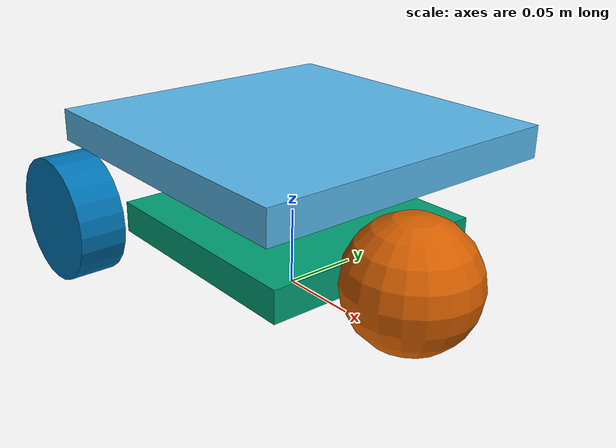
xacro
<robot name="offset_diff_drive" xmlns:xacro="http://ros.org/wiki/xacro">
    <xacro:property name="wheel_width" value="0.03" />
    <xacro:property name="wheel_radius" value="0.04" />

    <xacro:property name="wheel_separation" value="0.2" />
    <xacro:property name="wheel_offset" value="0.1" />

    <link name="base_link" />

    <joint name="base_joint" type="fixed">
        <origin xyz="0 0 ${wheel_radius + wheel_radius + 0.01 + 0.01}" rpy="0 0 0" />
        <axis xyz="0.0 0.0 1.0" />
        <parent link="base_link" />
        <child link="steer_base" />
    </joint>

    <link name="steer_base">
        <visual>
            <geometry>
                <box size="0.2 0.2 0.02" />
            </geometry>
        </visual>
        <collision>
            <geometry>
                <box size="0.2 0.2 0.02" />
            </geometry>
        </collision>
        <inertial>
            <mass value="0.1" />
            <origin xyz="0 0 0" />
            <inertia ixx="${0.1*(0.02*0.02+0.2*0.2)/12}" ixy="0" ixz="0" iyy="${0.1*(0.2*0.2+0.02*0.02)/12}" iyz="0" izz="${0.1*(0.2*0.2+0.2*0.2)/12}" />
        </inertial>
    </link>

    <joint name="steer_joint" type="continuous">
        <origin xyz="0 0 ${-wheel_radius - 0.01 - 0.01}" rpy="0 0 0" />
        <axis xyz="0.0 0.0 1.0" />
        <parent link="steer_base" />
        <child link="wheel_base" />
    </joint>

    <transmission name="steer_trans">
        <type>transmission_interface/SimpleTransmission</type>
        <joint name="steer_joint">
            <hardwareInterface>hardware_interface/PositionJointInterface</hardwareInterface>
        </joint>
        <actuator name="steer_motor">
            <hardwareInterface>hardware_interface/PositionJointInterface</hardwareInterface>
            <mechanicalReduction>1</mechanicalReduction>
        </actuator>
    </transmission>

    <link name="wheel_base">
        <visual>
            <geometry>
                <box size="0.15 0.15 0.02" />
            </geometry>
        </visual>
        <collision>
            <geometry>
                <box size="0.15 0.15 0.02" />
            </geometry>
        </collision>
        <inertial>
            <mass value="1" />
            <origin xyz="0 0 0" />
            <inertia ixx="${1*(0.02*0.02+0.15*0.15)/12}" ixy="0" ixz="0" iyy="${1*(0.15*0.15+0.02*0.02)/12}" iyz="0" izz="${1*(0.15*0.15+0.15*0.15)/12}" />
        </inertial>
    </link>

    <joint name="wheel_l_joint" type="continuous">
        <origin xyz="${-wheel_offset} ${wheel_separation/2} 0" rpy="0 0 0" />
        <axis xyz="0.0 1.0 0.0" />
        <limit effort="10" velocity="20" />
        <parent link="wheel_base" />
        <child link="wheel_l" />
    </joint>

    <transmission name="wheel_l_trans">
        <type>transmission_interface/SimpleTransmission</type>
        <joint name="wheel_l_joint">
            <hardwareInterface>hardware_interface/VelocityJointInterface</hardwareInterface>
        </joint>
        <actuator name="wheel_l_motor">
            <hardwareInterface>hardware_interface/VelocityJointInterface</hardwareInterface>
            <mechanicalReduction>1</mechanicalReduction>
        </actuator>
    </transmission>

    <link name="wheel_l">
        <visual>
            <origin xyz="0.0 0.0 0.0" rpy="${pi/2} 0.0 0.0" />
            <geometry>
                <cylinder radius="${wheel_radius}" length="${wheel_width}" />
            </geometry>
        </visual>
        <collision>
            <origin xyz="0.0 0.0 0.0" rpy="${pi/2} 0.0 0.0" />
            <geometry>
                <cylinder radius="${wheel_radius}" length="${wheel_width}" />
            </geometry>
        </collision>
        <inertial>
            <mass value="0.5" />
            <origin xyz="0 0 0" />
            <inertia ixx="${0.5*(3*wheel_radius*wheel_radius+wheel_width*wheel_width)/12}" ixy="0" ixz="0" iyy="${0.5*wheel_radius*wheel_radius/2}" iyz="0" izz="${0.5*(3*wheel_radius*wheel_radius+wheel_width*wheel_width)/12}" />
        </inertial>
    </link>

    <gazebo reference="wheel_l">
        <kp>1000000.0</kp>
        <kd>10.0</kd>
        <mu1>100.0</mu1>
        <mu2>100.0</mu2>
        <fdir1>1 0 0</fdir1>
        <maxVel>1.0</maxVel>
        <minDepth>0.00</minDepth>
    </gazebo>

    <joint name="wheel_r_joint" type="continuous">
        <origin xyz="${-wheel_offset} ${-wheel_separation/2} 0" rpy="0 0 0" />
        <axis xyz="0.0 1.0 0.0" />
        <limit effort="10" velocity="20" />
        <parent link="wheel_base" />
        <child link="wheel_r" />
    </joint>

    <transmission name="wheel_r_trans">
        <type>transmission_interface/SimpleTransmission</type>
        <joint name="wheel_r_joint">
            <hardwareInterface>hardware_interface/VelocityJointInterface</hardwareInterface>
        </joint>
        <actuator name="wheel_r_motor">
            <hardwareInterface>hardware_interface/VelocityJointInterface</hardwareInterface>
            <mechanicalReduction>1</mechanicalReduction>
        </actuator>
    </transmission>

    <link name="wheel_r">
        <visual>
            <origin xyz="0.0 0.0 0.0" rpy="${pi/2} 0.0 0.0" />
            <geometry>
                <cylinder radius="${wheel_radius}" length="${wheel_width}" />
            </geometry>
        </visual>
        <collision>
            <origin xyz="0.0 0.0 0.0" rpy="${pi/2} 0.0 0.0" />
            <geometry>
                <cylinder radius="${wheel_radius}" length="${wheel_width}" />
            </geometry>
        </collision>
        <inertial>
            <mass value="0.5" />
            <origin xyz="0 0 0" />
            <inertia ixx="${0.5*(3*wheel_radius*wheel_radius+wheel_width*wheel_width)/12}" ixy="0" ixz="0" iyy="${0.5*wheel_radius*wheel_radius/2}" iyz="0" izz="${0.5*(3*wheel_radius*wheel_radius+wheel_width*wheel_width)/12}" />
        </inertial>
    </link>

    <gazebo reference="wheel_r">
        <kp>1000000.0</kp>
        <kd>10.0</kd>
        <mu1>100.0</mu1>
        <mu2>100.0</mu2>
        <fdir1>1 0 0</fdir1>
        <maxVel>1.0</maxVel>
        <minDepth>0.00</minDepth>
    </gazebo>

    <joint name="caster_joint" type="fixed">
        <origin xyz="${wheel_offset} 0 0" rpy="0 0 0" />
        <parent link="wheel_base" />
        <child link="caster" />
    </joint>

    <link name="caster">
        <visual>
            <geometry>
                <sphere radius="${wheel_radius}" />
            </geometry>
        </visual>
        <collision>
            <geometry>
                <sphere radius="${wheel_radius}" />
            </geometry>
        </collision>
        <inertial>
            <mass value="0.2" />
            <origin xyz="0 0 0" />
            <inertia ixx="${2*0.2*wheel_radius*wheel_radius/5}" ixy="0" ixz="0" iyy="${2*0.2*wheel_radius*wheel_radius/5}" iyz="0" izz="${2*0.2*wheel_radius*wheel_radius/5}" />
        </inertial>
    </link>

    <gazebo reference="caster">
        <kp>1000000.0</kp>
        <kd>10.0</kd>
        <mu1>0.0</mu1>
        <mu2>0.0</mu2>
        <maxVel>1.0</maxVel>
        <minDepth>0.00</minDepth>
    </gazebo>

    <gazebo>
        <plugin name="gazebo_ros_control" filename="libgazebo_ros_control.so">
            <robotNamespace>/robot</robotNamespace>
        </plugin>
        <plugin name="p3d_base_controller" filename="libgazebo_ros_p3d.so">
            <frameName>map</frameName>
            <updateRate>50.0</updateRate>
            <bodyName>base_link</bodyName>
            <topicName>ground_truth/state</topicName>
        </plugin>
    </gazebo>
</robot>
